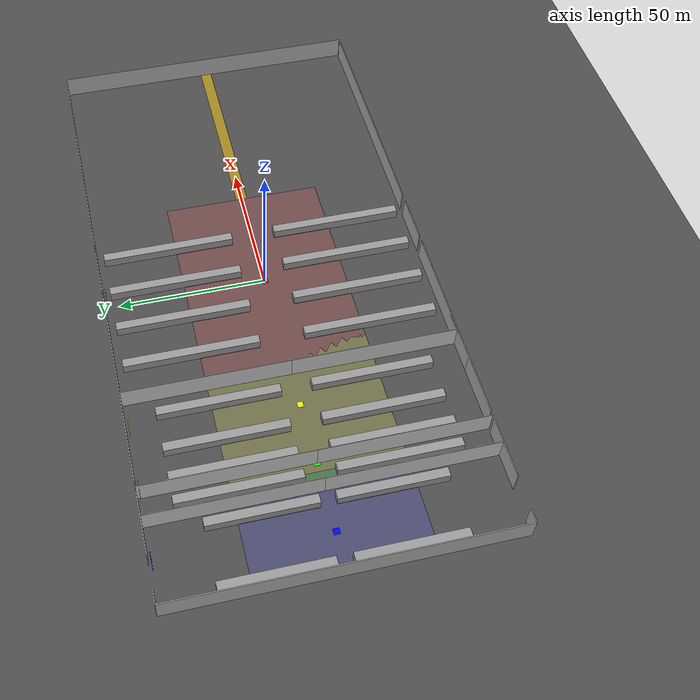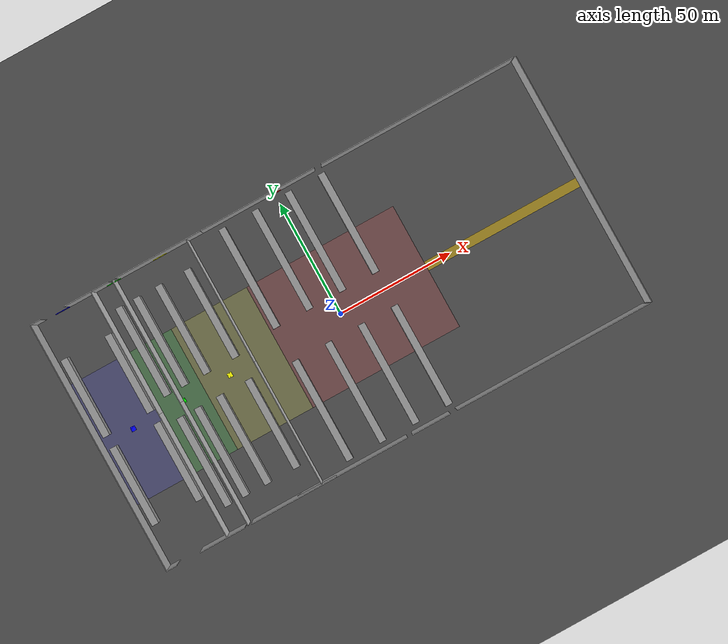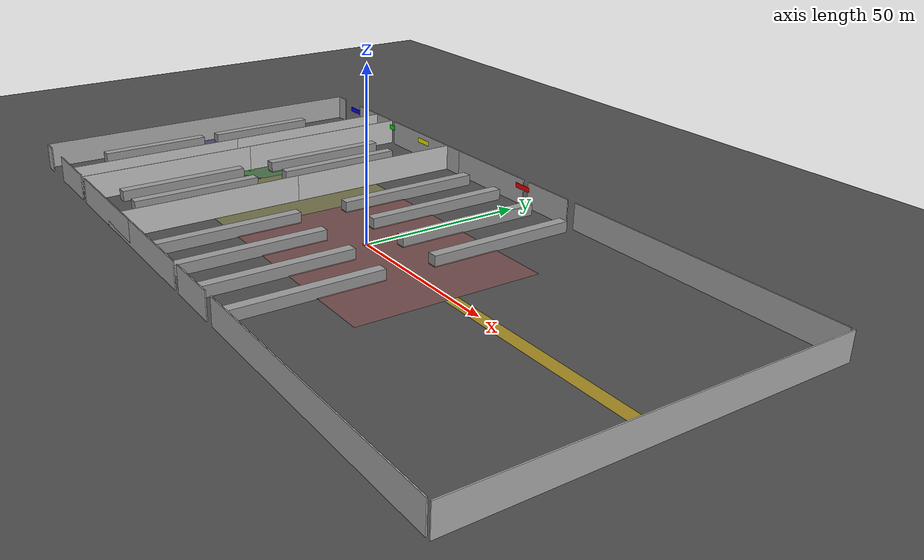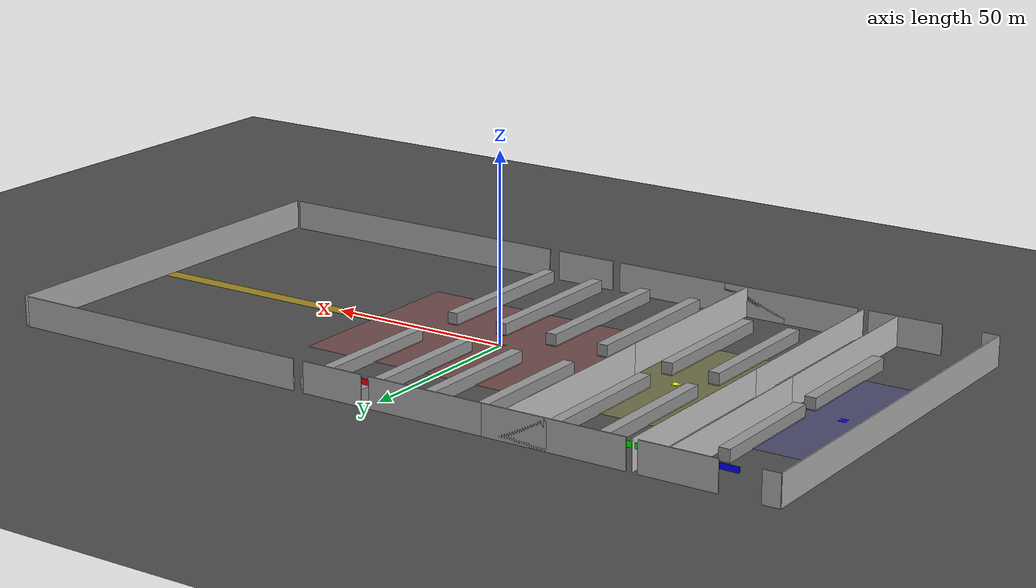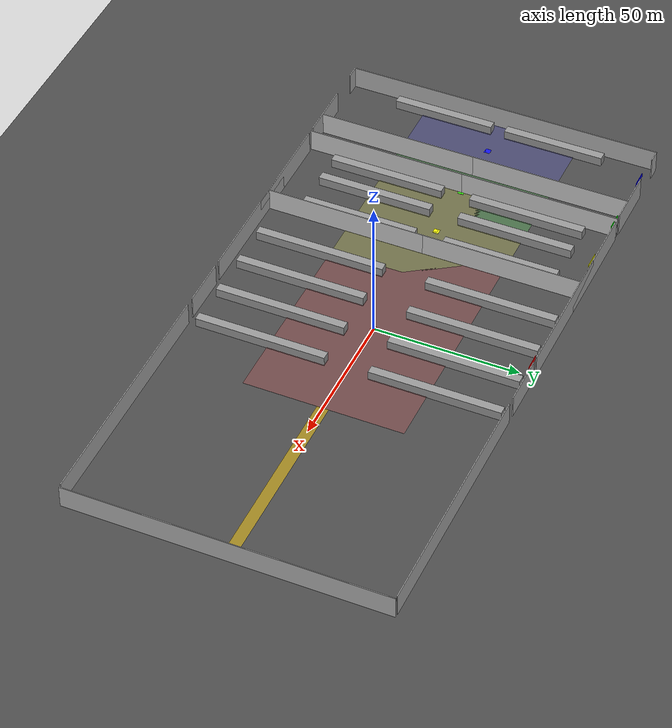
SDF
<?xml version="1.0" ?>
<sdf version="1.7">
  <world name="blueprint_warehouse">

    <!-- Physics Settings -->
    <physics name="1ms" type="ode">
      <max_step_size>0.001</max_step_size>
      <real_time_factor>1.0</real_time_factor>
      <real_time_update_rate>1000</real_time_update_rate>
    </physics>

    <!-- Scene Settings -->
    <scene>
      <ambient>0.4 0.4 0.4 1</ambient>
      <background>0.7 0.7 0.7 1</background>
      <shadows>true</shadows>
    </scene>

    <!-- Lighting -->
    <light name="sun" type="directional">
      <cast_shadows>true</cast_shadows>
      <pose>0 0 30 0 0 0</pose>
      <diffuse>0.8 0.8 0.8 1</diffuse>
      <specular>0.2 0.2 0.2 1</specular>
      <attenuation>
        <range>1000</range>
        <constant>0.9</constant>
        <linear>0.01</linear>
        <quadratic>0.001</quadratic>
      </attenuation>
      <direction>-0.5 0.1 -0.9</direction>
    </light>

    <!-- Additional warehouse lighting -->
    <light name="warehouse_light_1" type="point">
      <pose>-40 -25 8 0 0 0</pose>
      <diffuse>1 1 0.9 1</diffuse>
      <specular>0.1 0.1 0.1 1</specular>
      <attenuation>
        <range>40</range>
        <constant>0.5</constant>
        <linear>0.01</linear>
        <quadratic>0.001</quadratic>
      </attenuation>
    </light>

    <light name="warehouse_light_2" type="point">
      <pose>40 -25 8 0 0 0</pose>
      <diffuse>1 1 0.9 1</diffuse>
      <specular>0.1 0.1 0.1 1</specular>
      <attenuation>
        <range>40</range>
        <constant>0.5</constant>
        <linear>0.01</linear>
        <quadratic>0.001</quadratic>
      </attenuation>
    </light>

    <light name="warehouse_light_3" type="point">
      <pose>-40 25 8 0 0 0</pose>
      <diffuse>1 1 0.9 1</diffuse>
      <specular>0.1 0.1 0.1 1</specular>
      <attenuation>
        <range>40</range>
        <constant>0.5</constant>
        <linear>0.01</linear>
        <quadratic>0.001</quadratic>
      </attenuation>
    </light>

    <light name="warehouse_light_4" type="point">
      <pose>40 25 8 0 0 0</pose>
      <diffuse>1 1 0.9 1</diffuse>
      <specular>0.1 0.1 0.1 1</specular>
      <attenuation>
        <range>40</range>
        <constant>0.5</constant>
        <linear>0.01</linear>
        <quadratic>0.001</quadratic>
      </attenuation>
    </light>

    <!-- Ground Plane -->
    <model name="ground_plane">
      <static>true</static>
      <link name="link">
        <collision name="collision">
          <geometry>
            <plane>
              <normal>0 0 1</normal>
              <size>250 250</size>
            </plane>
          </geometry>
          <surface>
            <friction>
              <ode>
                <mu>100</mu>
                <mu2>50</mu2>
              </ode>
            </friction>
          </surface>
        </collision>
        <visual name="visual">
          <cast_shadows>false</cast_shadows>
          <geometry>
            <plane>
              <normal>0 0 1</normal>
              <size>250 250</size>
            </plane>
          </geometry>
          <material>
            <ambient>0.3 0.3 0.3 1</ambient>
            <diffuse>0.3 0.3 0.3 1</diffuse>
            <specular>0.1 0.1 0.1 1</specular>
          </material>
        </visual>
      </link>
    </model>

    <!-- WAREHOUSE STRUCTURE - EXACT BLUEPRINT MATCH                        -->
    <!-- Total warehouse: ~217m x 55m = 11,935 m²                          -->
    <!-- Room 101-FRYS: 2956 m² (54m x 55m)                               -->
    <!-- Room 102-KJØL: 2084 m² (38m x 55m)                               -->
    <!-- Room 104-TØRRVARE: 2600 m² (47m x 55m)                           -->
    <!-- Room 105-TØRRVARE: 4288 m² (78m x 55m)                           -->

    <!-- EXTERIOR WALLS -->
    <!-- North Wall (segmented with door openings) -->
    <!-- North Wall Segment 1: West end to Room 101 door -->
    <model name="north_wall_1">
      <static>true</static>
      <pose>-106.25 55 4 0 0 0</pose>
      <link name="link">
        <collision name="collision">
          <geometry>
            <box>
              <size>4.5 0.3 8</size>
            </box>
          </geometry>
        </collision>
        <visual name="visual">
          <geometry>
            <box>
              <size>4.5 0.3 8</size>
            </box>
          </geometry>
          <material>
            <ambient>0.5 0.5 0.5 1</ambient>
            <diffuse>0.7 0.7 0.7 1</diffuse>
          </material>
        </visual>
      </link>
    </model>

    <!-- North Wall Segment 2: Room 101 door to Room 102 door -->
    <model name="north_wall_2">
      <static>true</static>
      <pose>-83.5 55 4 0 0 0</pose>
      <link name="link">
        <collision name="collision">
          <geometry>
            <box>
              <size>20 0.3 8</size>
            </box>
          </geometry>
        </collision>
        <visual name="visual">
          <geometry>
            <box>
              <size>20 0.3 8</size>
            </box>
          </geometry>
          <material>
            <ambient>0.5 0.5 0.5 1</ambient>
            <diffuse>0.7 0.7 0.7 1</diffuse>
          </material>
        </visual>
      </link>
    </model>

    <!-- North Wall Segment 3: Room 102 door to Room 104 door -->
    <model name="north_wall_3">
      <static>true</static>
      <pose>-51.5 55 4 0 0 0</pose>
      <link name="link">
        <collision name="collision">
          <geometry>
            <box>
              <size>38 0.3 8</size>
            </box>
          </geometry>
        </collision>
        <visual name="visual">
          <geometry>
            <box>
              <size>38 0.3 8</size>
            </box>
          </geometry>
          <material>
            <ambient>0.5 0.5 0.5 1</ambient>
            <diffuse>0.7 0.7 0.7 1</diffuse>
          </material>
        </visual>
      </link>
    </model>

    <!-- North Wall Segment 4: Room 104 door to Room 105 center door -->
    <model name="north_wall_4">
      <static>true</static>
      <pose>-25.375 55 4 0 0 0</pose>
      <link name="link">
        <collision name="collision">
          <geometry>
            <box>
              <size>49.25 0.3 8</size>
            </box>
          </geometry>
        </collision>
        <visual name="visual">
          <geometry>
            <box>
              <size>49.25 0.3 8</size>
            </box>
          </geometry>
          <material>
            <ambient>0.5 0.5 0.5 1</ambient>
            <diffuse>0.7 0.7 0.7 1</diffuse>
          </material>
        </visual>
      </link>
    </model>

    <!-- North Wall Segment 5: Room 105 center door to Room 105 east door -->
    <model name="north_wall_5">
      <static>true</static>
      <pose>10 55 4 0 0 0</pose>
      <link name="link">
        <collision name="collision">
          <geometry>
            <box>
              <size>17 0.3 8</size>
            </box>
          </geometry>
        </collision>
        <visual name="visual">
          <geometry>
            <box>
              <size>17 0.3 8</size>
            </box>
          </geometry>
          <material>
            <ambient>0.5 0.5 0.5 1</ambient>
            <diffuse>0.7 0.7 0.7 1</diffuse>
          </material>
        </visual>
      </link>
    </model>

    <!-- North Wall Segment 6: Room 105 east door to east end -->
    <model name="north_wall_6">
      <static>true</static>
      <pose>64.5 55 4 0 0 0</pose>
      <link name="link">
        <collision name="collision">
          <geometry>
            <box>
              <size>86 0.3 8</size>
            </box>
          </geometry>
        </collision>
        <visual name="visual">
          <geometry>
            <box>
              <size>86 0.3 8</size>
            </box>
          </geometry>
          <material>
            <ambient>0.5 0.5 0.5 1</ambient>
            <diffuse>0.7 0.7 0.7 1</diffuse>
          </material>
        </visual>
      </link>
    </model>

    <!-- South Wall (segmented with door openings) -->
    <!-- South Wall Segment 1: West end to Room 101 door -->
    <model name="south_wall_1">
      <static>true</static>
      <pose>-106.25 -55 4 0 0 0</pose>
      <link name="link">
        <collision name="collision">
          <geometry>
            <box>
              <size>4.5 0.3 8</size>
            </box>
          </geometry>
        </collision>
        <visual name="visual">
          <geometry>
            <box>
              <size>4.5 0.3 8</size>
            </box>
          </geometry>
          <material>
            <ambient>0.5 0.5 0.5 1</ambient>
            <diffuse>0.7 0.7 0.7 1</diffuse>
          </material>
        </visual>
      </link>
    </model>

    <!-- South Wall Segment 2: Room 101 door to Room 102 door -->
    <model name="south_wall_2">
      <static>true</static>
      <pose>-83.5 -55 4 0 0 0</pose>
      <link name="link">
        <collision name="collision">
          <geometry>
            <box>
              <size>20 0.3 8</size>
            </box>
          </geometry>
        </collision>
        <visual name="visual">
          <geometry>
            <box>
              <size>20 0.3 8</size>
            </box>
          </geometry>
          <material>
            <ambient>0.5 0.5 0.5 1</ambient>
            <diffuse>0.7 0.7 0.7 1</diffuse>
          </material>
        </visual>
      </link>
    </model>

    <!-- South Wall Segment 3: Room 102 door to Room 104 door -->
    <model name="south_wall_3">
      <static>true</static>
      <pose>-51.5 -55 4 0 0 0</pose>
      <link name="link">
        <collision name="collision">
          <geometry>
            <box>
              <size>38 0.3 8</size>
            </box>
          </geometry>
        </collision>
        <visual name="visual">
          <geometry>
            <box>
              <size>38 0.3 8</size>
            </box>
          </geometry>
          <material>
            <ambient>0.5 0.5 0.5 1</ambient>
            <diffuse>0.7 0.7 0.7 1</diffuse>
          </material>
        </visual>
      </link>
    </model>

    <!-- South Wall Segment 4: Room 104 door to Room 105 center door -->
    <model name="south_wall_4">
      <static>true</static>
      <pose>-25.375 -55 4 0 0 0</pose>
      <link name="link">
        <collision name="collision">
          <geometry>
            <box>
              <size>49.25 0.3 8</size>
            </box>
          </geometry>
        </collision>
        <visual name="visual">
          <geometry>
            <box>
              <size>49.25 0.3 8</size>
            </box>
          </geometry>
          <material>
            <ambient>0.5 0.5 0.5 1</ambient>
            <diffuse>0.7 0.7 0.7 1</diffuse>
          </material>
        </visual>
      </link>
    </model>

    <!-- South Wall Segment 5: Room 105 center door to Room 105 east door -->
    <model name="south_wall_5">
      <static>true</static>
      <pose>10 -55 4 0 0 0</pose>
      <link name="link">
        <collision name="collision">
          <geometry>
            <box>
              <size>17 0.3 8</size>
            </box>
          </geometry>
        </collision>
        <visual name="visual">
          <geometry>
            <box>
              <size>17 0.3 8</size>
            </box>
          </geometry>
          <material>
            <ambient>0.5 0.5 0.5 1</ambient>
            <diffuse>0.7 0.7 0.7 1</diffuse>
          </material>
        </visual>
      </link>
    </model>

    <!-- South Wall Segment 6: Room 105 east door to east end -->
    <model name="south_wall_6">
      <static>true</static>
      <pose>64.5 -55 4 0 0 0</pose>
      <link name="link">
        <collision name="collision">
          <geometry>
            <box>
              <size>86 0.3 8</size>
            </box>
          </geometry>
        </collision>
        <visual name="visual">
          <geometry>
            <box>
              <size>86 0.3 8</size>
            </box>
          </geometry>
          <material>
            <ambient>0.5 0.5 0.5 1</ambient>
            <diffuse>0.7 0.7 0.7 1</diffuse>
          </material>
        </visual>
      </link>
    </model>

    <!-- West Wall (full height) -->
    <model name="west_wall">
      <static>true</static>
      <pose>-108.5 0 4 0 0 0</pose>
      <link name="link">
        <collision name="collision">
          <geometry>
            <box>
              <size>0.3 110 8</size>
            </box>
          </geometry>
        </collision>
        <visual name="visual">
          <geometry>
            <box>
              <size>0.3 110 8</size>
            </box>
          </geometry>
          <material>
            <ambient>0.5 0.5 0.5 1</ambient>
            <diffuse>0.7 0.7 0.7 1</diffuse>
          </material>
        </visual>
      </link>
    </model>

    <!-- East Wall (full height) -->
    <model name="east_wall">
      <static>true</static>
      <pose>108.5 0 4 0 0 0</pose>
      <link name="link">
        <collision name="collision">
          <geometry>
            <box>
              <size>0.3 110 8</size>
            </box>
          </geometry>
        </collision>
        <visual name="visual">
          <geometry>
            <box>
              <size>0.3 110 8</size>
            </box>
          </geometry>
          <material>
            <ambient>0.5 0.5 0.5 1</ambient>
            <diffuse>0.7 0.7 0.7 1</diffuse>
          </material>
        </visual>
      </link>
    </model>

    <!-- ROOM DIVIDERS                                                       -->

    <!-- Divider between 101-FRYS and 102-KJØL (vertical, with door opening) -->
    <!-- Divider 101-102 Segment 1: North to door -->
    <model name="divider_101_102_north">
      <static>true</static>
      <pose>-81.5 27.5 4 0 0 0</pose>
      <link name="link">
        <collision name="collision">
          <geometry>
            <box>
              <size>0.2 55 8</size>
            </box>
          </geometry>
        </collision>
        <visual name="visual">
          <geometry>
            <box>
              <size>0.2 55 8</size>
            </box>
          </geometry>
          <material>
            <ambient>0.6 0.6 0.6 1</ambient>
            <diffuse>0.8 0.8 0.8 1</diffuse>
          </material>
        </visual>
      </link>
    </model>

    <!-- Divider 101-102 Segment 2: Door to south -->
    <model name="divider_101_102_south">
      <static>true</static>
      <pose>-81.5 -27.5 4 0 0 0</pose>
      <link name="link">
        <collision name="collision">
          <geometry>
            <box>
              <size>0.2 55 8</size>
            </box>
          </geometry>
        </collision>
        <visual name="visual">
          <geometry>
            <box>
              <size>0.2 55 8</size>
            </box>
          </geometry>
          <material>
            <ambient>0.6 0.6 0.6 1</ambient>
            <diffuse>0.8 0.8 0.8 1</diffuse>
          </material>
        </visual>
      </link>
    </model>

    <!-- Divider between 102-KJØL and 104-TØRRVARE (vertical, with door opening) -->
    <!-- Divider 102-104 Segment 1: North to door -->
    <model name="divider_102_104_north">
      <static>true</static>
      <pose>-72 27.5 4 0 0 0</pose>
      <link name="link">
        <collision name="collision">
          <geometry>
            <box>
              <size>0.2 55 8</size>
            </box>
          </geometry>
        </collision>
        <visual name="visual">
          <geometry>
            <box>
              <size>0.2 55 8</size>
            </box>
          </geometry>
          <material>
            <ambient>0.6 0.6 0.6 1</ambient>
            <diffuse>0.8 0.8 0.8 1</diffuse>
          </material>
        </visual>
      </link>
    </model>

    <!-- Divider 102-104 Segment 2: Door to south -->
    <model name="divider_102_104_south">
      <static>true</static>
      <pose>-72 -27.5 4 0 0 0</pose>
      <link name="link">
        <collision name="collision">
          <geometry>
            <box>
              <size>0.2 55 8</size>
            </box>
          </geometry>
        </collision>
        <visual name="visual">
          <geometry>
            <box>
              <size>0.2 55 8</size>
            </box>
          </geometry>
          <material>
            <ambient>0.6 0.6 0.6 1</ambient>
            <diffuse>0.8 0.8 0.8 1</diffuse>
          </material>
        </visual>
      </link>
    </model>

    <!-- Divider between 104-TØRRVARE and 105-TØRRVARE (vertical, with door opening) -->
    <!-- Divider 104-105 Segment 1: North to door -->
    <model name="divider_104_105_north">
      <static>true</static>
      <pose>-39 27.5 4 0 0 0</pose>
      <link name="link">
        <collision name="collision">
          <geometry>
            <box>
              <size>0.2 55 8</size>
            </box>
          </geometry>
        </collision>
        <visual name="visual">
          <geometry>
            <box>
              <size>0.2 55 8</size>
            </box>
          </geometry>
          <material>
            <ambient>0.6 0.6 0.6 1</ambient>
            <diffuse>0.8 0.8 0.8 1</diffuse>
          </material>
        </visual>
      </link>
    </model>

    <!-- Divider 104-105 Segment 2: Door to south -->
    <model name="divider_104_105_south">
      <static>true</static>
      <pose>-39 -27.5 4 0 0 0</pose>
      <link name="link">
        <collision name="collision">
          <geometry>
            <box>
              <size>0.2 55 8</size>
            </box>
          </geometry>
        </collision>
        <visual name="visual">
          <geometry>
            <box>
              <size>0.2 55 8</size>
            </box>
          </geometry>
          <material>
            <ambient>0.6 0.6 0.6 1</ambient>
            <diffuse>0.8 0.8 0.8 1</diffuse>
          </material>
        </visual>
      </link>
    </model>

    <!-- ROOM FLOOR MARKINGS FOR IDENTIFICATION                             -->

    <!-- Room 101-FRYS Floor Marking (2956 m²) -->
    <model name="room_101_floor">
      <static>true</static>
      <pose>-95 0 0.01 0 0 0</pose>
      <link name="link">
        <visual name="visual">
          <geometry>
            <box>
              <size>27 55 0.02</size>
            </box>
          </geometry>
          <material>
            <ambient>0.3 0.3 0.8 0.3</ambient>
            <diffuse>0.3 0.3 0.8 0.3</diffuse>
          </material>
        </visual>
      </link>
    </model>

    <!-- Room 102-KJØL Floor Marking (2084 m²) -->
    <model name="room_102_floor">
      <static>true</static>
      <pose>-72 0 0.01 0 0 0</pose>
      <link name="link">
        <visual name="visual">
          <geometry>
            <box>
              <size>19 55 0.02</size>
            </box>
          </geometry>
          <material>
            <ambient>0.3 0.8 0.3 0.3</ambient>
            <diffuse>0.3 0.8 0.3 0.3</diffuse>
          </material>
        </visual>
      </link>
    </model>

    <!-- Room 104-TØRRVARE Floor Marking (2600 m²) -->
    <model name="room_104_floor">
      <static>true</static>
      <pose>-51.5 0 0.01 0 0 0</pose>
      <link name="link">
        <visual name="visual">
          <geometry>
            <box>
              <size>47 55 0.02</size>
            </box>
          </geometry>
          <material>
            <ambient>0.8 0.8 0.3 0.3</ambient>
            <diffuse>0.8 0.8 0.3 0.3</diffuse>
          </material>
        </visual>
      </link>
    </model>

    <!-- Room 105-TØRRVARE Floor Marking (4288 m²) -->
    <model name="room_105_floor">
      <static>true</static>
      <pose>0 0 0.01 0 0 0</pose>
      <link name="link">
        <visual name="visual">
          <geometry>
            <box>
              <size>78 55 0.02</size>
            </box>
          </geometry>
          <material>
            <ambient>0.8 0.3 0.3 0.3</ambient>
            <diffuse>0.8 0.3 0.3 0.3</diffuse>
          </material>
        </visual>
      </link>
    </model>

    <!-- ROOM IDENTIFICATION SIGNS                                           -->

    <!-- Room 101-FRYS Sign -->
    <model name="sign_101_frys">
      <static>true</static>
      <pose>-95 54 6 0 0 0</pose>
      <link name="link">
        <visual name="visual">
          <geometry>
            <box>
              <size>6 0.1 1.5</size>
            </box>
          </geometry>
          <material>
            <ambient>0 0 0.8 1</ambient>
            <diffuse>0 0 1 1</diffuse>
          </material>
        </visual>
      </link>
    </model>

    <!-- Room 102-KJØL Sign -->
    <model name="sign_102_kjol">
      <static>true</static>
      <pose>-72 54 6 0 0 0</pose>
      <link name="link">
        <visual name="visual">
          <geometry>
            <box>
              <size>6 0.1 1.5</size>
            </box>
          </geometry>
          <material>
            <ambient>0 0.8 0 1</ambient>
            <diffuse>0 1 0 1</diffuse>
          </material>
        </visual>
      </link>
    </model>

    <!-- Room 104-TØRRVARE Sign -->
    <model name="sign_104_torrvare">
      <static>true</static>
      <pose>-51.5 54 6 0 0 0</pose>
      <link name="link">
        <visual name="visual">
          <geometry>
            <box>
              <size>6 0.1 1.5</size>
            </box>
          </geometry>
          <material>
            <ambient>0.8 0.8 0 1</ambient>
            <diffuse>1 1 0 1</diffuse>
          </material>
        </visual>
      </link>
    </model>

    <!-- Room 105-TØRRVARE Sign -->
    <model name="sign_105_torrvare">
      <static>true</static>
      <pose>0 54 6 0 0 0</pose>
      <link name="link">
        <visual name="visual">
          <geometry>
            <box>
              <size>6 0.1 1.5</size>
            </box>
          </geometry>
          <material>
            <ambient>0.8 0 0 1</ambient>
            <diffuse>1 0 0 1</diffuse>
          </material>
        </visual>
      </link>
    </model>

    <!-- RACKING SYSTEMS (Based on Blueprint Parallel Lines)                -->

    <!-- Racks in Room 101-FRYS -->
    <model name="rack_101_1">
      <static>true</static>
      <pose>-105 20 0 0 0 0</pose>
      <link name="link">
        <collision name="collision">
          <geometry>
            <box>
              <size>3 35 6</size>
            </box>
          </geometry>
        </collision>
        <visual name="visual">
          <geometry>
            <box>
              <size>3 35 6</size>
            </box>
          </geometry>
          <material>
            <ambient>0.4 0.4 0.4 1</ambient>
            <diffuse>0.6 0.6 0.6 1</diffuse>
          </material>
        </visual>
      </link>
    </model>

    <model name="rack_101_2">
      <static>true</static>
      <pose>-105 -20 0 0 0 0</pose>
      <link name="link">
        <collision name="collision">
          <geometry>
            <box>
              <size>3 35 6</size>
            </box>
          </geometry>
        </collision>
        <visual name="visual">
          <geometry>
            <box>
              <size>3 35 6</size>
            </box>
          </geometry>
          <material>
            <ambient>0.4 0.4 0.4 1</ambient>
            <diffuse>0.6 0.6 0.6 1</diffuse>
          </material>
        </visual>
      </link>
    </model>

    <model name="rack_101_3">
      <static>true</static>
      <pose>-85 20 0 0 0 0</pose>
      <link name="link">
        <collision name="collision">
          <geometry>
            <box>
              <size>3 35 6</size>
            </box>
          </geometry>
        </collision>
        <visual name="visual">
          <geometry>
            <box>
              <size>3 35 6</size>
            </box>
          </geometry>
          <material>
            <ambient>0.4 0.4 0.4 1</ambient>
            <diffuse>0.6 0.6 0.6 1</diffuse>
          </material>
        </visual>
      </link>
    </model>

    <model name="rack_101_4">
      <static>true</static>
      <pose>-85 -20 0 0 0 0</pose>
      <link name="link">
        <collision name="collision">
          <geometry>
            <box>
              <size>3 35 6</size>
            </box>
          </geometry>
        </collision>
        <visual name="visual">
          <geometry>
            <box>
              <size>3 35 6</size>
            </box>
          </geometry>
          <material>
            <ambient>0.4 0.4 0.4 1</ambient>
            <diffuse>0.6 0.6 0.6 1</diffuse>
          </material>
        </visual>
      </link>
    </model>

    <!-- Racks in Room 102-KJØL -->
    <model name="rack_102_1">
      <static>true</static>
      <pose>-76 25 0 0 0 0</pose>
      <link name="link">
        <collision name="collision">
          <geometry>
            <box>
              <size>3 40 6</size>
            </box>
          </geometry>
        </collision>
        <visual name="visual">
          <geometry>
            <box>
              <size>3 40 6</size>
            </box>
          </geometry>
          <material>
            <ambient>0.4 0.4 0.4 1</ambient>
            <diffuse>0.6 0.6 0.6 1</diffuse>
          </material>
        </visual>
      </link>
    </model>

    <model name="rack_102_2">
      <static>true</static>
      <pose>-76 -25 0 0 0 0</pose>
      <link name="link">
        <collision name="collision">
          <geometry>
            <box>
              <size>3 40 6</size>
            </box>
          </geometry>
        </collision>
        <visual name="visual">
          <geometry>
            <box>
              <size>3 40 6</size>
            </box>
          </geometry>
          <material>
            <ambient>0.4 0.4 0.4 1</ambient>
            <diffuse>0.6 0.6 0.6 1</diffuse>
          </material>
        </visual>
      </link>
    </model>

    <model name="rack_102_3">
      <static>true</static>
      <pose>-68 25 0 0 0 0</pose>
      <link name="link">
        <collision name="collision">
          <geometry>
            <box>
              <size>3 40 6</size>
            </box>
          </geometry>
        </collision>
        <visual name="visual">
          <geometry>
            <box>
              <size>3 40 6</size>
            </box>
          </geometry>
          <material>
            <ambient>0.4 0.4 0.4 1</ambient>
            <diffuse>0.6 0.6 0.6 1</diffuse>
          </material>
        </visual>
      </link>
    </model>

    <model name="rack_102_4">
      <static>true</static>
      <pose>-68 -25 0 0 0 0</pose>
      <link name="link">
        <collision name="collision">
          <geometry>
            <box>
              <size>3 40 6</size>
            </box>
          </geometry>
        </collision>
        <visual name="visual">
          <geometry>
            <box>
              <size>3 40 6</size>
            </box>
          </geometry>
          <material>
            <ambient>0.4 0.4 0.4 1</ambient>
            <diffuse>0.6 0.6 0.6 1</diffuse>
          </material>
        </visual>
      </link>
    </model>

    <!-- Racks in Room 104-TØRRVARE -->
    <model name="rack_104_1">
      <static>true</static>
      <pose>-58 25 0 0 0 0</pose>
      <link name="link">
        <collision name="collision">
          <geometry>
            <box>
              <size>3 40 6</size>
            </box>
          </geometry>
        </collision>
        <visual name="visual">
          <geometry>
            <box>
              <size>3 40 6</size>
            </box>
          </geometry>
          <material>
            <ambient>0.4 0.4 0.4 1</ambient>
            <diffuse>0.6 0.6 0.6 1</diffuse>
          </material>
        </visual>
      </link>
    </model>

    <model name="rack_104_2">
      <static>true</static>
      <pose>-58 -25 0 0 0 0</pose>
      <link name="link">
        <collision name="collision">
          <geometry>
            <box>
              <size>3 40 6</size>
            </box>
          </geometry>
        </collision>
        <visual name="visual">
          <geometry>
            <box>
              <size>3 40 6</size>
            </box>
          </geometry>
          <material>
            <ambient>0.4 0.4 0.4 1</ambient>
            <diffuse>0.6 0.6 0.6 1</diffuse>
          </material>
        </visual>
      </link>
    </model>

    <model name="rack_104_3">
      <static>true</static>
      <pose>-45 25 0 0 0 0</pose>
      <link name="link">
        <collision name="collision">
          <geometry>
            <box>
              <size>3 40 6</size>
            </box>
          </geometry>
        </collision>
        <visual name="visual">
          <geometry>
            <box>
              <size>3 40 6</size>
            </box>
          </geometry>
          <material>
            <ambient>0.4 0.4 0.4 1</ambient>
            <diffuse>0.6 0.6 0.6 1</diffuse>
          </material>
        </visual>
      </link>
    </model>

    <model name="rack_104_4">
      <static>true</static>
      <pose>-45 -25 0 0 0 0</pose>
      <link name="link">
        <collision name="collision">
          <geometry>
            <box>
              <size>3 40 6</size>
            </box>
          </geometry>
        </collision>
        <visual name="visual">
          <geometry>
            <box>
              <size>3 40 6</size>
            </box>
          </geometry>
          <material>
            <ambient>0.4 0.4 0.4 1</ambient>
            <diffuse>0.6 0.6 0.6 1</diffuse>
          </material>
        </visual>
      </link>
    </model>

    <!-- Racks in Room 105-TØRRVARE (largest room) -->
    <model name="rack_105_1">
      <static>true</static>
      <pose>-25 30 0 0 0 0</pose>
      <link name="link">
        <collision name="collision">
          <geometry>
            <box>
              <size>3 45 6</size>
            </box>
          </geometry>
        </collision>
        <visual name="visual">
          <geometry>
            <box>
              <size>3 45 6</size>
            </box>
          </geometry>
          <material>
            <ambient>0.4 0.4 0.4 1</ambient>
            <diffuse>0.6 0.6 0.6 1</diffuse>
          </material>
        </visual>
      </link>
    </model>

    <model name="rack_105_2">
      <static>true</static>
      <pose>-25 -30 0 0 0 0</pose>
      <link name="link">
        <collision name="collision">
          <geometry>
            <box>
              <size>3 45 6</size>
            </box>
          </geometry>
        </collision>
        <visual name="visual">
          <geometry>
            <box>
              <size>3 45 6</size>
            </box>
          </geometry>
          <material>
            <ambient>0.4 0.4 0.4 1</ambient>
            <diffuse>0.6 0.6 0.6 1</diffuse>
          </material>
        </visual>
      </link>
    </model>

    <model name="rack_105_3">
      <static>true</static>
      <pose>-10 30 0 0 0 0</pose>
      <link name="link">
        <collision name="collision">
          <geometry>
            <box>
              <size>3 45 6</size>
            </box>
          </geometry>
        </collision>
        <visual name="visual">
          <geometry>
            <box>
              <size>3 45 6</size>
            </box>
          </geometry>
          <material>
            <ambient>0.4 0.4 0.4 1</ambient>
            <diffuse>0.6 0.6 0.6 1</diffuse>
          </material>
        </visual>
      </link>
    </model>

    <model name="rack_105_4">
      <static>true</static>
      <pose>-10 -30 0 0 0 0</pose>
      <link name="link">
        <collision name="collision">
          <geometry>
            <box>
              <size>3 45 6</size>
            </box>
          </geometry>
        </collision>
        <visual name="visual">
          <geometry>
            <box>
              <size>3 45 6</size>
            </box>
          </geometry>
          <material>
            <ambient>0.4 0.4 0.4 1</ambient>
            <diffuse>0.6 0.6 0.6 1</diffuse>
          </material>
        </visual>
      </link>
    </model>

    <model name="rack_105_5">
      <static>true</static>
      <pose>5 30 0 0 0 0</pose>
      <link name="link">
        <collision name="collision">
          <geometry>
            <box>
              <size>3 45 6</size>
            </box>
          </geometry>
        </collision>
        <visual name="visual">
          <geometry>
            <box>
              <size>3 45 6</size>
            </box>
          </geometry>
          <material>
            <ambient>0.4 0.4 0.4 1</ambient>
            <diffuse>0.6 0.6 0.6 1</diffuse>
          </material>
        </visual>
      </link>
    </model>

    <model name="rack_105_6">
      <static>true</static>
      <pose>5 -30 0 0 0 0</pose>
      <link name="link">
        <collision name="collision">
          <geometry>
            <box>
              <size>3 45 6</size>
            </box>
          </geometry>
        </collision>
        <visual name="visual">
          <geometry>
            <box>
              <size>3 45 6</size>
            </box>
          </geometry>
          <material>
            <ambient>0.4 0.4 0.4 1</ambient>
            <diffuse>0.6 0.6 0.6 1</diffuse>
          </material>
        </visual>
      </link>
    </model>

    <model name="rack_105_7">
      <static>true</static>
      <pose>20 30 0 0 0 0</pose>
      <link name="link">
        <collision name="collision">
          <geometry>
            <box>
              <size>3 45 6</size>
            </box>
          </geometry>
        </collision>
        <visual name="visual">
          <geometry>
            <box>
              <size>3 45 6</size>
            </box>
          </geometry>
          <material>
            <ambient>0.4 0.4 0.4 1</ambient>
            <diffuse>0.6 0.6 0.6 1</diffuse>
          </material>
        </visual>
      </link>
    </model>

    <model name="rack_105_8">
      <static>true</static>
      <pose>20 -30 0 0 0 0</pose>
      <link name="link">
        <collision name="collision">
          <geometry>
            <box>
              <size>3 45 6</size>
            </box>
          </geometry>
        </collision>
        <visual name="visual">
          <geometry>
            <box>
              <size>3 45 6</size>
            </box>
          </geometry>
          <material>
            <ambient>0.4 0.4 0.4 1</ambient>
            <diffuse>0.6 0.6 0.6 1</diffuse>
          </material>
        </visual>
      </link>
    </model>

    <!-- NAVIGATION CORRIDORS AND MARKINGS                                   -->

    <!-- Main navigation corridor (East-West) -->
    <model name="nav_corridor_ew">
      <static>true</static>
      <pose>0 0 0.005 0 0 0</pose>
      <link name="link">
        <visual name="visual">
          <geometry>
            <box>
              <size>217 4 0.01</size>
            </box>
          </geometry>
          <material>
            <ambient>1 0.8 0 0.5</ambient>
            <diffuse>1 0.8 0 0.5</diffuse>
          </material>
        </visual>
      </link>
    </model>

    <!-- Navigation markers at room centers -->
    <model name="nav_marker_101">
      <static>true</static>
      <pose>-95 0 0.01 0 0 0</pose>
      <link name="link">
        <visual name="visual">
          <geometry>
            <box>
              <size>2 2 0.02</size>
            </box>
          </geometry>
          <material>
            <ambient>0 0 1 1</ambient>
            <diffuse>0 0 1 1</diffuse>
          </material>
        </visual>
      </link>
    </model>

    <model name="nav_marker_102">
      <static>true</static>
      <pose>-72 0 0.01 0 0 0</pose>
      <link name="link">
        <visual name="visual">
          <geometry>
            <box>
              <size>2 2 0.02</size>
            </box>
          </geometry>
          <material>
            <ambient>0 1 0 1</ambient>
            <diffuse>0 1 0 1</diffuse>
          </material>
        </visual>
      </link>
    </model>

    <model name="nav_marker_104">
      <static>true</static>
      <pose>-50.75 0 0.01 0 0 0</pose>
      <link name="link">
        <visual name="visual">
          <geometry>
            <box>
              <size>2 2 0.02</size>
            </box>
          </geometry>
          <material>
            <ambient>1 1 0 1</ambient>
            <diffuse>1 1 0 1</diffuse>
          </material>
        </visual>
      </link>
    </model>

    <model name="nav_marker_105">
      <static>true</static>
      <pose>0 0 0.01 0 0 0</pose>
      <link name="link">
        <visual name="visual">
          <geometry>
            <box>
              <size>2 2 0.02</size>
            </box>
          </geometry>
          <material>
            <ambient>1 0 0 1</ambient>
            <diffuse>1 0 0 1</diffuse>
          </material>
        </visual>
      </link>
    </model>

    <!-- DOOR OPENINGS CREATED BY SEGMENTED WALLS                            -->
    <!-- Door openings are now created by gaps in the segmented walls        -->

    <!-- FORKLIFT SPAWN POINT - Will be spawned separately -->

  </world>
</sdf>
